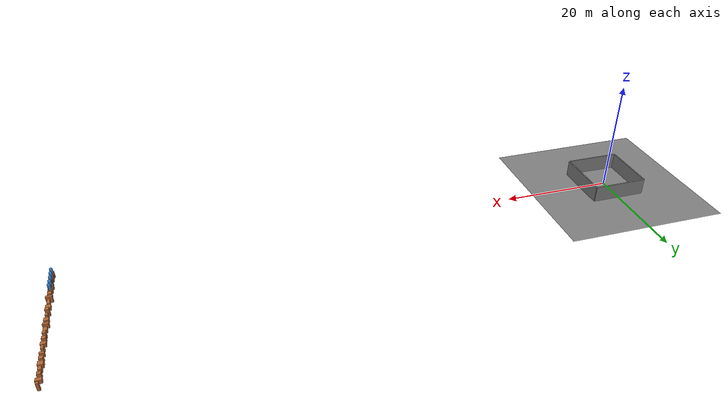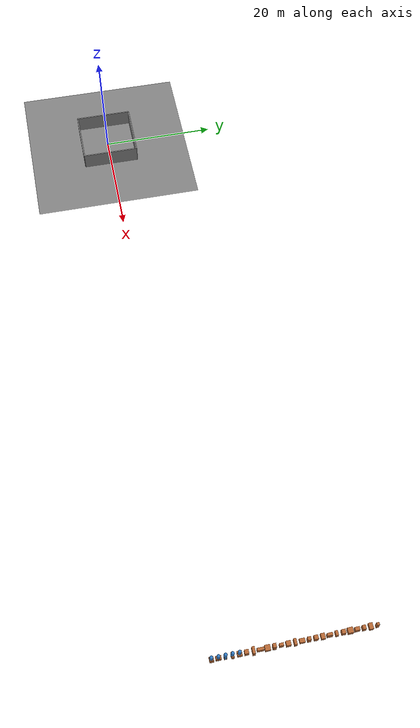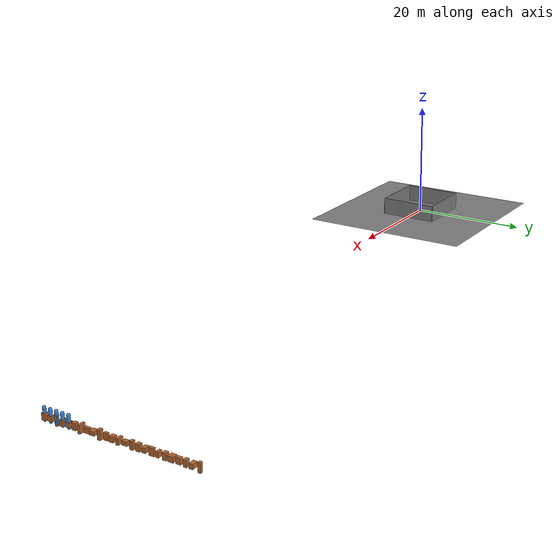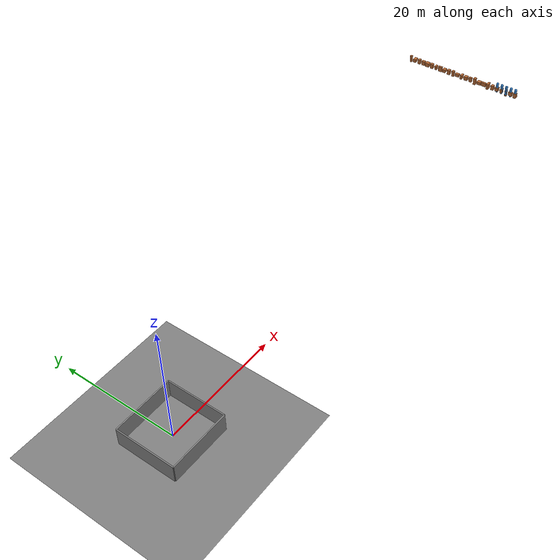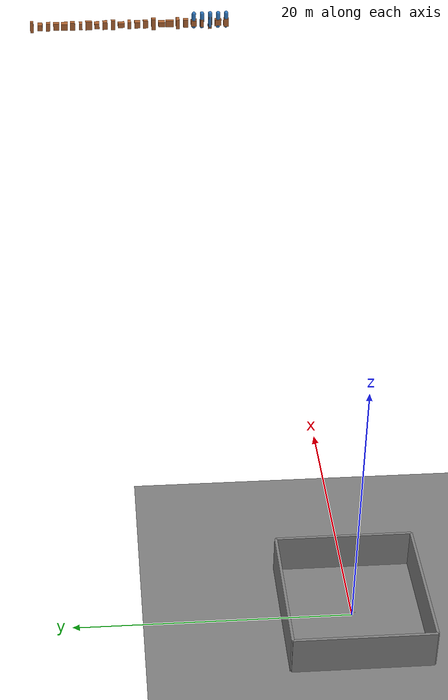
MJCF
<mujoco model="spot_scene_train">

  <compiler angle="radian" autolimits="true"/>

  <!-- RL-training physics: Euler integrator for fast MJX JIT compilation.
       Switch to implicitfast + impratio=100 for sim-to-real evaluation. -->
  <option timestep="0.005" gravity="0 0 -9.81" integrator="Euler"
          cone="elliptic" impratio="10"/>

  <default>
    <!-- Spot robot defaults (from Menagerie reference) -->
    <default class="spot">
      <geom solref="0.004 1"/>
      <joint actuatorfrcrange="-1000 1000" damping="1.0" armature="0.01" frictionloss="0.1"/>
      <position kp="500" kv="40" inheritrange="1" ctrllimited="true"/>
      <default class="collision">
        <geom group="3"/>
        <default class="foot">
          <geom type="sphere" size="0.036" pos="0 0 -0.3365" priority="1"
                condim="3" solimp="0.015 1 0.036" friction="0.8 0.02 0.01"/>
        </default>
      </default>
    </default>
    <default class="obstacle">
      <geom type="box" rgba="0.7 0.4 0.2 1" contype="0" conaffinity="0"/>
    </default>
    <default class="dynamic_obs">
      <geom type="capsule" rgba="0.2 0.5 0.8 0.9" contype="0" conaffinity="0"/>
    </default>
  </default>

  <!-- WORLD BODY                                                         -->
  <worldbody>

    <!-- Floor -->
    <geom name="floor" type="plane" size="15 15 0.1" condim="3"/>

    <!-- Room walls (10x10 m room) — fixed -->
    <geom name="wall_north" type="box" size="5 0.1 1.5" pos="0 5 1.5"/>
    <geom name="wall_south" type="box" size="5 0.1 1.5" pos="0 -5 1.5"/>
    <geom name="wall_east" type="box" size="0.1 5 1.5" pos="5 0 1.5"/>
    <geom name="wall_west" type="box" size="0.1 5 1.5" pos="-5 0 1.5"/>

    <!-- STATIC OBSTACLE MOCAP BODIES (25 max from config)            -->
    <body name="obstacle_0"  mocap="true" pos="100 0 0.5"><geom class="obstacle" size="0.3 0.3 0.5"/></body>
    <body name="obstacle_1"  mocap="true" pos="100 1 0.5"><geom class="obstacle" size="0.25 0.4 0.4"/></body>
    <body name="obstacle_2"  mocap="true" pos="100 2 0.5"><geom class="obstacle" size="0.2 0.2 0.8"/></body>
    <body name="obstacle_3"  mocap="true" pos="100 3 0.5"><geom class="obstacle" size="0.4 0.2 0.45"/></body>
    <body name="obstacle_4"  mocap="true" pos="100 4 0.5"><geom class="obstacle" size="0.35 0.35 0.35"/></body>
    <body name="obstacle_5"  mocap="true" pos="100 5 0.5"><geom class="obstacle" size="0.3 0.3 0.5"/></body>
    <body name="obstacle_6"  mocap="true" pos="100 6 0.5"><geom class="obstacle" size="0.5 0.2 0.6"/></body>
    <body name="obstacle_7"  mocap="true" pos="100 7 0.5"><geom class="obstacle" size="0.2 0.5 0.4"/></body>
    <body name="obstacle_8"  mocap="true" pos="100 8 0.5"><geom class="obstacle" size="0.4 0.4 0.3"/></body>
    <body name="obstacle_9"  mocap="true" pos="100 9 0.5"><geom class="obstacle" size="0.3 0.25 0.7"/></body>
    <body name="obstacle_10" mocap="true" pos="100 10 0.5"><geom class="obstacle" size="0.2 0.3 0.5"/></body>
    <body name="obstacle_11" mocap="true" pos="100 11 0.5"><geom class="obstacle" size="0.35 0.35 0.4"/></body>
    <body name="obstacle_12" mocap="true" pos="100 12 0.5"><geom class="obstacle" size="0.45 0.2 0.45"/></body>
    <body name="obstacle_13" mocap="true" pos="100 13 0.5"><geom class="obstacle" size="0.3 0.4 0.3"/></body>
    <body name="obstacle_14" mocap="true" pos="100 14 0.5"><geom class="obstacle" size="0.25 0.25 0.6"/></body>
    <body name="obstacle_15" mocap="true" pos="100 15 0.5"><geom class="obstacle" size="0.3 0.3 0.5"/></body>
    <body name="obstacle_16" mocap="true" pos="100 16 0.5"><geom class="obstacle" size="0.4 0.3 0.35"/></body>
    <body name="obstacle_17" mocap="true" pos="100 17 0.5"><geom class="obstacle" size="0.2 0.4 0.55"/></body>
    <body name="obstacle_18" mocap="true" pos="100 18 0.5"><geom class="obstacle" size="0.35 0.2 0.4"/></body>
    <body name="obstacle_19" mocap="true" pos="100 19 0.5"><geom class="obstacle" size="0.3 0.3 0.5"/></body>
    <body name="obstacle_20" mocap="true" pos="100 20 0.5"><geom class="obstacle" size="0.4 0.4 0.4"/></body>
    <body name="obstacle_21" mocap="true" pos="100 21 0.5"><geom class="obstacle" size="0.25 0.35 0.45"/></body>
    <body name="obstacle_22" mocap="true" pos="100 22 0.5"><geom class="obstacle" size="0.3 0.25 0.5"/></body>
    <body name="obstacle_23" mocap="true" pos="100 23 0.5"><geom class="obstacle" size="0.45 0.3 0.35"/></body>
    <body name="obstacle_24" mocap="true" pos="100 24 0.5"><geom class="obstacle" size="0.2 0.2 0.7"/></body>

    <!-- DYNAMIC OBSTACLE MOCAP BODIES (5 max from config)            -->
    <body name="dynobs_0" mocap="true" pos="100 0 0.85"><geom class="dynamic_obs" size="0.25 0.85"/></body>
    <body name="dynobs_1" mocap="true" pos="100 1 0.85"><geom class="dynamic_obs" size="0.25 0.85"/></body>
    <body name="dynobs_2" mocap="true" pos="100 2 0.85"><geom class="dynamic_obs" size="0.25 0.85"/></body>
    <body name="dynobs_3" mocap="true" pos="100 3 0.85"><geom class="dynamic_obs" size="0.25 0.85"/></body>
    <body name="dynobs_4" mocap="true" pos="100 4 0.85"><geom class="dynamic_obs" size="0.25 0.85"/></body>

    <!-- HUMANOID OBSTACLE MOCAP BODY                                  -->
    <body name="human_0" mocap="true" pos="100 0 1.0">
      <geom name="human_0_torso" type="capsule" size="0.12 0.25"
            pos="0 0 0" rgba="0.8 0.6 0.5 1" contype="0" conaffinity="0"/>
      <geom name="human_0_head" type="sphere" size="0.12"
            pos="0 0 0.42" rgba="0.8 0.6 0.5 1" contype="0" conaffinity="0"/>
      <geom name="human_0_lul" type="capsule" size="0.07 0.2"
            pos="-0.1 0 -0.45" rgba="0.3 0.3 0.7 1" contype="0" conaffinity="0"/>
      <geom name="human_0_rul" type="capsule" size="0.07 0.2"
            pos="0.1 0 -0.45" rgba="0.3 0.3 0.7 1" contype="0" conaffinity="0"/>
      <geom name="human_0_lll" type="capsule" size="0.06 0.2"
            pos="-0.1 0 -0.85" rgba="0.3 0.3 0.7 1" contype="0" conaffinity="0"/>
      <geom name="human_0_rll" type="capsule" size="0.06 0.2"
            pos="0.1 0 -0.85" rgba="0.3 0.3 0.7 1" contype="0" conaffinity="0"/>
    </body>

    <!-- SPOT ROBOT — collision primitives only (no visual meshes)    -->
    <!-- Same mass, inertia, joint limits as spot_scene.xml           -->
    <body name="base_link" childclass="spot" pos="0 0 0.46">
      <freejoint name="root"/>

      <!-- Real body inertial: 32.86 kg with proper CoM offset -->
      <inertial pos="0.0063944 -9.81216e-05 0.000911379" mass="32.86"
                diaginertia="0.13144 0.13144 0.13144"/>

      <!-- Body collision: box approximation (MJX-friendly, no mesh collision) -->
      <geom type="box" size="0.32 0.1 0.08" pos="0 0 0" class="collision"/>

      <!-- ── CAMERA SITES (match config.py CAMERA_RIG exactly) ── -->
      <site name="cam_front_center" pos="0.32 0.0 0.05"
            euler="0 -0.1745 0" size="0.01"/>
      <site name="cam_front_left" pos="0.20 0.16 0.05"
            euler="0 -0.1745 1.2217" size="0.01"/>
      <site name="cam_front_right" pos="0.20 -0.16 0.05"
            euler="0 -0.1745 -1.2217" size="0.01"/>
      <site name="cam_rear_left" pos="-0.28 0.14 0.05"
            euler="0 -0.1745 2.5307" size="0.01"/>
      <site name="cam_rear_right" pos="-0.28 -0.14 0.05"
            euler="0 -0.1745 -2.5307" size="0.01"/>

      <!-- IMU site at body center -->
      <site name="imu" pos="0 0 0" size="0.01"/>

      <!-- FRONT-LEFT LEG                                                -->
      <body name="fl_hip" pos="0.29785 0.055 0">
        <inertial pos="-0.00537435 0.0128418 9.87523e-05" quat="1 1 -1 1" mass="1.68"
          diaginertia="0.00226544 0.00211474 0.00181296"/>
        <joint name="fl_hx" axis="1 0 0" range="-0.785398 0.785398"/>
        <body name="fl_uleg" pos="0 0.1108 0">
          <inertial pos="0.00514237 -0.00243237 -0.121009" mass="2.34"
            diaginertia="0.0275596 0.0273549 0.00284815"/>
          <joint name="fl_hy" axis="0 1 0" range="-0.898845 2.29511"/>
          <geom type="capsule" size="0.04" fromto="0 0 0 0 0 -0.32" class="collision"/>
          <body name="fl_lleg" pos="0.025 0 -0.32">
            <inertial pos="0.00225794 4.6076e-05 -0.180082" quat="1 0 0 1" mass="0.35"
              diaginertia="0.00405032 0.00399902 0.00014934"/>
            <joint name="fl_kn" axis="0 1 0" range="-2.7929 -0.254402"/>
            <geom type="capsule" size="0.03" fromto="0 0 0 0 0 -0.32" class="collision"/>
            <geom name="fl_foot" class="foot"/>
          </body>
        </body>
      </body>

      <!-- FRONT-RIGHT LEG                                               -->
      <body name="fr_hip" pos="0.29785 -0.055 0">
        <inertial pos="-0.00537435 -0.0128418 -9.87523e-05" quat="1 1 -1 1" mass="1.68"
          diaginertia="0.00226544 0.00211474 0.00181296"/>
        <joint name="fr_hx" axis="1 0 0" range="-0.785398 0.785398"/>
        <body name="fr_uleg" pos="0 -0.1108 0">
          <inertial pos="0.00514237 0.00243237 -0.121009" mass="2.34"
            diaginertia="0.0275596 0.0273549 0.00284815"/>
          <joint name="fr_hy" axis="0 1 0" range="-0.898845 2.24363"/>
          <geom type="capsule" size="0.04" fromto="0 0 0 0 0 -0.32" class="collision"/>
          <body name="fr_lleg" pos="0.025 0 -0.32">
            <inertial pos="0.00225794 4.6076e-05 -0.180082" quat="1 0 0 1" mass="0.35"
              diaginertia="0.00405032 0.00399902 0.00014934"/>
            <joint name="fr_kn" axis="0 1 0" range="-2.7929 -0.255648"/>
            <geom type="capsule" size="0.03" fromto="0 0 0 0 0 -0.32" class="collision"/>
            <geom name="fr_foot" class="foot"/>
          </body>
        </body>
      </body>

      <!-- HIND-LEFT LEG                                                 -->
      <body name="hl_hip" pos="-0.29785 0.055 0">
        <inertial pos="0.00537435 0.0128418 -9.87523e-05" quat="1 1 -1 1" mass="1.68"
          diaginertia="0.00226544 0.00211474 0.00181296"/>
        <joint name="hl_hx" axis="1 0 0" range="-0.785398 0.785398"/>
        <body name="hl_uleg" pos="0 0.1108 0">
          <inertial pos="0.00514237 -0.00243237 -0.121009" mass="2.34"
            diaginertia="0.0275596 0.0273549 0.00284815"/>
          <joint name="hl_hy" axis="0 1 0" range="-0.898845 2.29511"/>
          <geom type="capsule" size="0.04" fromto="0 0 0 0 0 -0.32" class="collision"/>
          <body name="hl_lleg" pos="0.025 0 -0.32">
            <inertial pos="0.00225794 4.6076e-05 -0.180082" quat="1 0 0 1" mass="0.35"
              diaginertia="0.00405032 0.00399902 0.00014934"/>
            <joint name="hl_kn" axis="0 1 0" range="-2.7929 -0.247067"/>
            <geom type="capsule" size="0.03" fromto="0 0 0 0 0 -0.32" class="collision"/>
            <geom name="hl_foot" class="foot"/>
          </body>
        </body>
      </body>

      <!-- HIND-RIGHT LEG                                                -->
      <body name="hr_hip" pos="-0.29785 -0.055 0">
        <inertial pos="0.00537435 -0.0128418 9.87523e-05" quat="1 1 -1 1" mass="1.68"
          diaginertia="0.00226544 0.00211474 0.00181296"/>
        <joint name="hr_hx" axis="1 0 0" range="-0.785398 0.785398"/>
        <body name="hr_uleg" pos="0 -0.1108 0">
          <inertial pos="0.00514237 0.00243237 -0.121009" mass="2.34"
            diaginertia="0.0275596 0.0273549 0.00284815"/>
          <joint name="hr_hy" axis="0 1 0" range="-0.898845 2.29511"/>
          <geom type="capsule" size="0.04" fromto="0 0 0 0 0 -0.32" class="collision"/>
          <body name="hr_lleg" pos="0.025 0 -0.32">
            <inertial pos="0.00225794 4.6076e-05 -0.180082" quat="1 0 0 1" mass="0.35"
              diaginertia="0.00405032 0.00399902 0.00014934"/>
            <joint name="hr_kn" axis="0 1 0" range="-2.7929 -0.248282"/>
            <geom type="capsule" size="0.03" fromto="0 0 0 0 0 -0.32" class="collision"/>
            <geom name="hr_foot" class="foot"/>
          </body>
        </body>
      </body>

    </body> <!-- end base_link -->

  </worldbody>

  <!-- CONTACT EXCLUSIONS — prevent self-collision body<->upper legs    -->
  <contact>
    <exclude body1="base_link" body2="fl_uleg"/>
    <exclude body1="base_link" body2="fr_uleg"/>
    <exclude body1="base_link" body2="hl_uleg"/>
    <exclude body1="base_link" body2="hr_uleg"/>
  </contact>

  <!-- ACTUATORS — position control, kp=500 kv=40 (real Spot SEA)      -->
  <!-- Force limits ±1000N per joint via actuatorfrcrange in defaults   -->
  <actuator>
    <position class="spot" name="act_fl_hx" joint="fl_hx"/>
    <position class="spot" name="act_fl_hy" joint="fl_hy"/>
    <position class="spot" name="act_fl_kn" joint="fl_kn"/>
    <position class="spot" name="act_fr_hx" joint="fr_hx"/>
    <position class="spot" name="act_fr_hy" joint="fr_hy"/>
    <position class="spot" name="act_fr_kn" joint="fr_kn"/>
    <position class="spot" name="act_hl_hx" joint="hl_hx"/>
    <position class="spot" name="act_hl_hy" joint="hl_hy"/>
    <position class="spot" name="act_hl_kn" joint="hl_kn"/>
    <position class="spot" name="act_hr_hx" joint="hr_hx"/>
    <position class="spot" name="act_hr_hy" joint="hr_hy"/>
    <position class="spot" name="act_hr_kn" joint="hr_kn"/>
  </actuator>

  <!-- SENSORS                                                           -->
  <sensor>
    <jointpos name="jpos_fl_hx" joint="fl_hx"/>
    <jointpos name="jpos_fl_hy" joint="fl_hy"/>
    <jointpos name="jpos_fl_kn" joint="fl_kn"/>
    <jointpos name="jpos_fr_hx" joint="fr_hx"/>
    <jointpos name="jpos_fr_hy" joint="fr_hy"/>
    <jointpos name="jpos_fr_kn" joint="fr_kn"/>
    <jointpos name="jpos_hl_hx" joint="hl_hx"/>
    <jointpos name="jpos_hl_hy" joint="hl_hy"/>
    <jointpos name="jpos_hl_kn" joint="hl_kn"/>
    <jointpos name="jpos_hr_hx" joint="hr_hx"/>
    <jointpos name="jpos_hr_hy" joint="hr_hy"/>
    <jointpos name="jpos_hr_kn" joint="hr_kn"/>
    <jointvel name="jvel_fl_hx" joint="fl_hx"/>
    <jointvel name="jvel_fl_hy" joint="fl_hy"/>
    <jointvel name="jvel_fl_kn" joint="fl_kn"/>
    <jointvel name="jvel_fr_hx" joint="fr_hx"/>
    <jointvel name="jvel_fr_hy" joint="fr_hy"/>
    <jointvel name="jvel_fr_kn" joint="fr_kn"/>
    <jointvel name="jvel_hl_hx" joint="hl_hx"/>
    <jointvel name="jvel_hl_hy" joint="hl_hy"/>
    <jointvel name="jvel_hl_kn" joint="hl_kn"/>
    <jointvel name="jvel_hr_hx" joint="hr_hx"/>
    <jointvel name="jvel_hr_hy" joint="hr_hy"/>
    <jointvel name="jvel_hr_kn" joint="hr_kn"/>
    <framequat  name="imu_quat"   objtype="site" objname="imu"/>
    <framelinvel name="imu_linvel" objtype="site" objname="imu"/>
    <frameangvel name="imu_angvel" objtype="site" objname="imu"/>
  </sensor>

  <!-- KEYFRAME — real standing pose from Spot SDK                      -->
  <keyframe>
    <key name="home" qpos="
    0 0 0.46
    1 0 0 0
    0 1.04 -1.8
    0 1.04 -1.8
    0 1.04 -1.8
    0 1.04 -1.8"
      ctrl="
    0 1.04 -1.8
    0 1.04 -1.8
    0 1.04 -1.8
    0 1.04 -1.8"/>
  </keyframe>

</mujoco>
